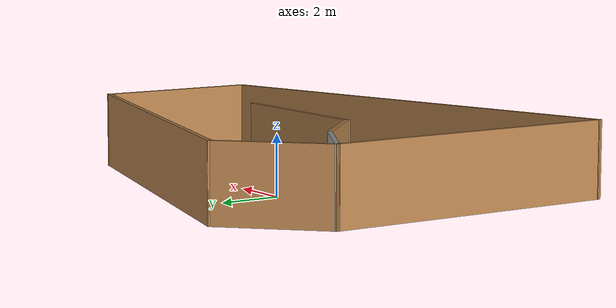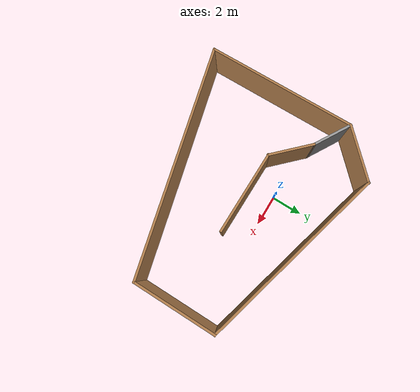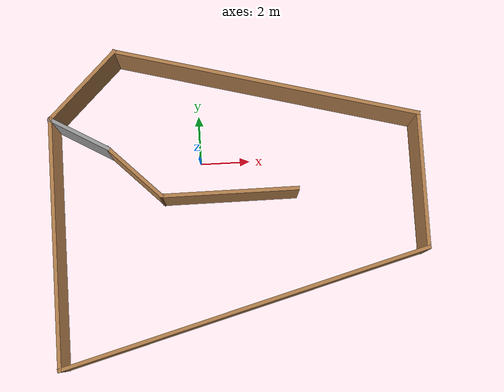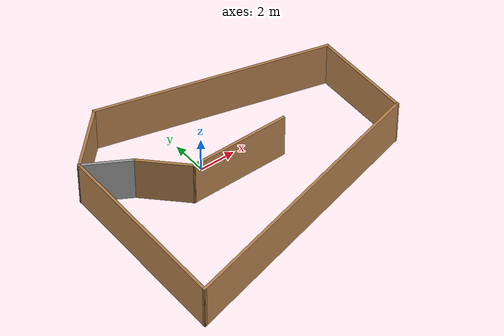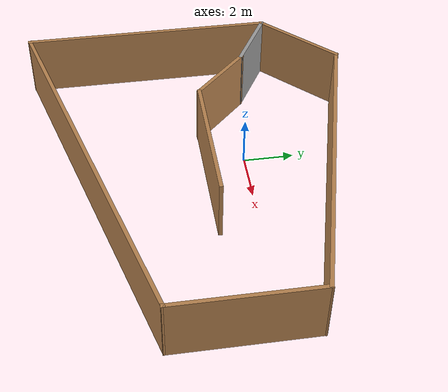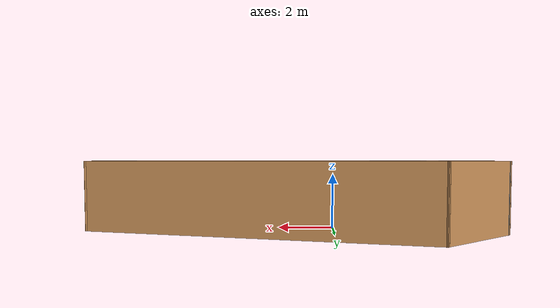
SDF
<?xml version='1.0'?>
<sdf version='1.7'>
  <model name='simple_maze'>
    <pose>1.45674 -1.86583 0 0 -0 0</pose>
    <link name='Wall_10'>
      <collision name='Wall_10_Collision'>
        <geometry>
          <box>
            <size>2.75 0.15 2.5</size>
          </box>
        </geometry>
        <pose>0 0 1.25 0 -0 0</pose>
      </collision>
      <visual name='Wall_10_Visual'>
        <pose>0 0 1.25 0 -0 0</pose>
        <geometry>
          <box>
            <size>2.75 0.15 2.5</size>
          </box>
        </geometry>
        <material>
          <script>
            <uri>file://media/materials/scripts/gazebo.material</uri>
            <name>Gazebo/Grey</name>
          </script>
          <ambient>1 1 1 1</ambient>
        </material>
        <meta>
          <layer>0</layer>
        </meta>
      </visual>
      <pose>-6.15981 2.96561 0 0 -0 -0.523599</pose>
    </link>
    <link name='Wall_11'>
      <collision name='Wall_11_Collision'>
        <geometry>
          <box>
            <size>3 0.15 2.5</size>
          </box>
        </geometry>
        <pose>0 0 1.25 0 -0 0</pose>
      </collision>
      <visual name='Wall_11_Visual'>
        <pose>0 0 1.25 0 -0 0</pose>
        <geometry>
          <box>
            <size>3 0.15 2.5</size>
          </box>
        </geometry>
        <material>
          <script>
            <uri>file://media/materials/scripts/gazebo.material</uri>
            <name>Gazebo/Wood</name>
          </script>
          <ambient>1 1 1 1</ambient>
        </material>
        <meta>
          <layer>0</layer>
        </meta>
      </visual>
      <pose>-4.02635 1.30798 0 0 -0 -0.785398</pose>
    </link>
    <link name='Wall_12'>
      <collision name='Wall_12_Collision'>
        <geometry>
          <box>
            <size>5.5 0.15 2.5</size>
          </box>
        </geometry>
        <pose>0 0 1.25 0 -0 0</pose>
      </collision>
      <visual name='Wall_12_Visual'>
        <pose>0 0 1.25 0 -0 0</pose>
        <geometry>
          <box>
            <size>5.5 0.15 2.5</size>
          </box>
        </geometry>
        <material>
          <script>
            <uri>file://media/materials/scripts/gazebo.material</uri>
            <name>Gazebo/Wood</name>
          </script>
          <ambient>1 1 1 1</ambient>
        </material>
        <meta>
          <layer>0</layer>
        </meta>
      </visual>
      <pose>-0.343717 0.300352 0 0 -0 0</pose>
    </link>
    <link name='Wall_4'>
      <collision name='Wall_4_Collision'>
        <geometry>
          <box>
            <size>10 0.15 2.5</size>
          </box>
        </geometry>
        <pose>0 0 1.25 0 -0 0</pose>
      </collision>
      <visual name='Wall_4_Visual'>
        <pose>0 0 1.25 0 -0 0</pose>
        <geometry>
          <box>
            <size>10 0.15 2.5</size>
          </box>
        </geometry>
        <material>
          <script>
            <uri>file://media/materials/scripts/gazebo.material</uri>
            <name>Gazebo/Wood</name>
          </script>
          <ambient>1 1 1 1</ambient>
        </material>
        <meta>
          <layer>0</layer>
        </meta>
      </visual>
      <pose>-7.28564 -1.30939 0 0 -0 -1.5708</pose>
    </link>
    <link name='Wall_5'>
      <collision name='Wall_5_Collision'>
        <geometry>
          <box>
            <size>15.25 0.15 2.5</size>
          </box>
        </geometry>
        <pose>0 0 1.25 0 -0 0</pose>
      </collision>
      <visual name='Wall_5_Visual'>
        <pose>0 0 1.25 0 -0 0</pose>
        <geometry>
          <box>
            <size>15.25 0.15 2.5</size>
          </box>
        </geometry>
        <material>
          <script>
            <uri>file://media/materials/scripts/gazebo.material</uri>
            <name>Gazebo/Wood</name>
          </script>
          <ambient>1 1 1 1</ambient>
        </material>
        <meta>
          <layer>0</layer>
        </meta>
      </visual>
      <pose>0.007102 -4.28031 0 0 -0 0.261799</pose>
    </link>
    <link name='Wall_6'>
      <collision name='Wall_6_Collision'>
        <geometry>
          <box>
            <size>5.5 0.15 2.5</size>
          </box>
        </geometry>
        <pose>0 0 1.25 0 -0 0</pose>
      </collision>
      <visual name='Wall_6_Visual'>
        <pose>0 0 1.25 0 -0 0</pose>
        <geometry>
          <box>
            <size>5.5 0.15 2.5</size>
          </box>
        </geometry>
        <material>
          <script>
            <uri>file://media/materials/scripts/gazebo.material</uri>
            <name>Gazebo/Wood</name>
          </script>
          <ambient>1 1 1 1</ambient>
        </material>
        <meta>
          <layer>0</layer>
        </meta>
      </visual>
      <pose>7.29984 0.348773 0 0 -0 1.5708</pose>
    </link>
    <link name='Wall_7'>
      <collision name='Wall_7_Collision'>
        <geometry>
          <box>
            <size>12.5 0.15 2.5</size>
          </box>
        </geometry>
        <pose>0 0 1.25 0 -0 0</pose>
      </collision>
      <visual name='Wall_7_Visual'>
        <pose>0 0 1.25 0 -0 0</pose>
        <geometry>
          <box>
            <size>12.5 0.15 2.5</size>
          </box>
        </geometry>
        <material>
          <script>
            <uri>file://media/materials/scripts/gazebo.material</uri>
            <name>Gazebo/Wood</name>
          </script>
          <ambient>1 1 1 1</ambient>
        </material>
        <meta>
          <layer>0</layer>
        </meta>
      </visual>
      <pose>1.33525 4.62198 0 0 -0 2.87979</pose>
    </link>
    <link name='Wall_9'>
      <collision name='Wall_9_Collision'>
        <geometry>
          <box>
            <size>3.87018 0.15 2.5</size>
          </box>
        </geometry>
        <pose>0 0 1.25 0 -0 0</pose>
      </collision>
      <visual name='Wall_9_Visual'>
        <pose>0 0 1.25 0 -0 0</pose>
        <geometry>
          <box>
            <size>3.87018 0.15 2.5</size>
          </box>
        </geometry>
        <material>
          <script>
            <uri>file://media/materials/scripts/gazebo.material</uri>
            <name>Gazebo/Wood</name>
          </script>
          <ambient>1 1 1 1</ambient>
        </material>
        <meta>
          <layer>0</layer>
        </meta>
      </visual>
      <pose>-5.95749 4.9179 0 0 -0 -2.36602</pose>
    </link>
    <static>1</static>
  </model>
</sdf>
